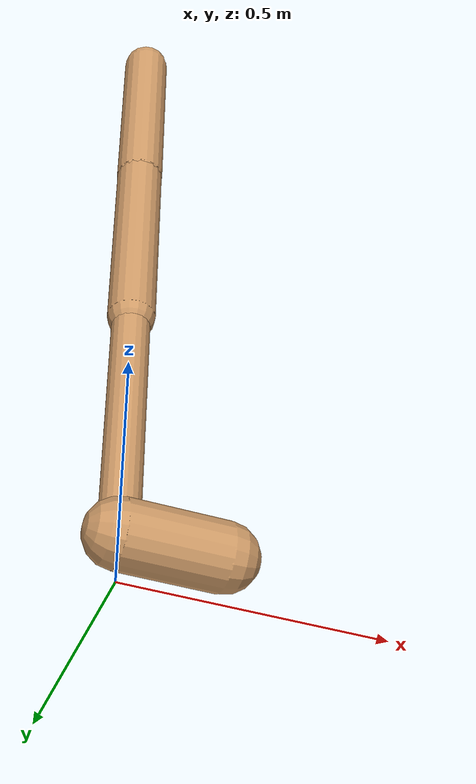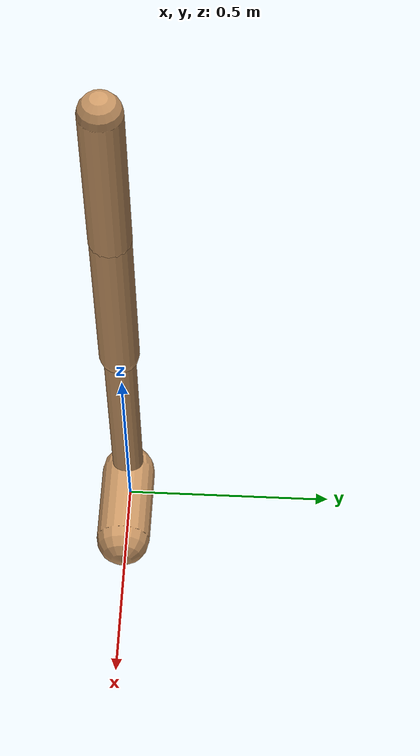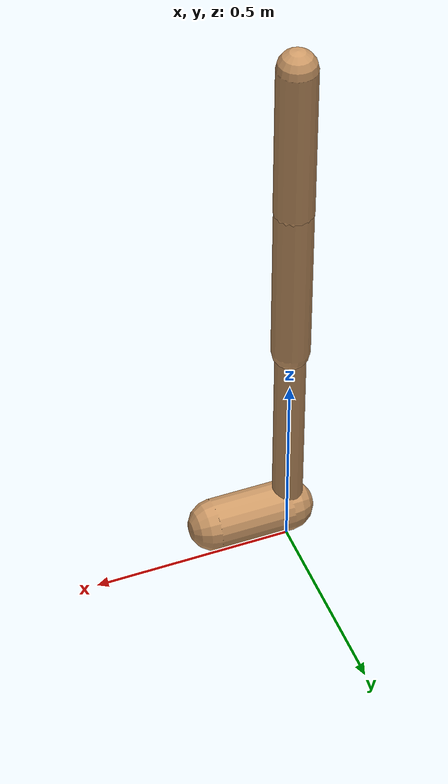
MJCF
<mujoco model="walker2d">
  <compiler angle="degree" coordinate="global" inertiafromgeom="true" />
  <default>
    <joint armature="0.01" damping=".1" limited="true" />
    <geom conaffinity="0" condim="3" contype="1" density="1000" friction="0.8 .1 .1" rgba="0.8 0.6 .4 1" />
  </default>
  <option integrator="RK4" timestep="0.002" />
  <worldbody>

    <body name="torso" pos="0 0 -0.046731404468702886">
      <joint armature="0" axis="1 0 0" damping="0" limited="false" name="ignorex" pos="0 0 0" stiffness="0" type="slide" />
      <joint armature="0" axis="0 0 1" damping="0" limited="false" name="ignorez" pos="0 0 0" ref="1.25" stiffness="0" type="slide" />
      <joint armature="0" axis="0 1 0" damping="0" limited="false" name="ignorey" pos="0 0 0" stiffness="0" type="hinge" />
      <geom fromto="0 0 1.45 0 0 1.05" name="torso_geom" size="0.04829063879112758" type="capsule" />
      <body name="thigh">
        <joint axis="0 -1 0" name="thigh_joint" pos="0 0 1.05" range="-150 0" type="hinge" />
        <geom fromto="0.0 0.0 1.05 0.0 0.0 0.6221359284325435" name="thigh_geom" size="0.04737179375767557" type="capsule" />
        <body name="leg" pos="0.0 0.0 0.022135928432543528">
          <joint axis="0 -1 0" name="leg_joint" pos="0 0 0.6" range="-150 0" type="hinge" />
          <geom fromto="0.0 0.0 0.6 0.0 0.0 0.12459547603615942" name="leg_geom" size="0.037897435006140456" type="capsule" />
          <body name="foot" pos="0.0 0.0 0.024595476036159414">
            <joint axis="0 -1 0" name="foot_joint" pos="0 0 0.1" range="-45 45" type="hinge" />
            <geom fromto="0.0 0.0 0.1 0.19319916163057474 0.0 0.1" name="foot_geom" size="0.0649840260644031" type="capsule" />
          </body>
        </body>
      </body>

      <body name="thigh_left">
        <joint axis="0 -1 0" name="thigh_left_joint" pos="0 0 1.05" range="-150 0" type="hinge" />
        <geom fromto="0.0 0.0 1.05 0.0 0.0 0.6221359284325435" name="thigh_left_geom" rgba=".7 .3 .6 1" size="0.04737179375767557" type="capsule" />
        <body name="leg_left" pos="0.0 0.0 0.022135928432543528">
          <joint axis="0 -1 0" name="leg_left_joint" pos="0 0 0.6" range="-150 0" type="hinge" />
          <geom fromto="0.0 0.0 0.6 0.0 0.0 0.12459547603615942" name="leg_left_geom" rgba=".7 .3 .6 1" size="0.037897435006140456" type="capsule" />
          <body name="foot_left" pos="0.0 0.0 0.024595476036159414">
            <joint axis="0 -1 0" name="foot_left_joint" pos="0 0 0.1" range="-45 45" type="hinge" />
            <geom fromto="0.0 0.0 0.1 0.19319916163057474 0.0 0.1" name="foot_left_geom" rgba=".7 .3 .6 1" size="0.0649840260644031" type="capsule" />
          </body>
        </body>
      </body>
    </body>
  </worldbody>
  <actuator>

    <motor ctrllimited="true" ctrlrange="-1.0 1.0" gear="100" joint="thigh_joint" />
    <motor ctrllimited="true" ctrlrange="-1.0 1.0" gear="100" joint="leg_joint" />
    <motor ctrllimited="true" ctrlrange="-1.0 1.0" gear="100" joint="foot_joint" />
    <motor ctrllimited="true" ctrlrange="-1.0 1.0" gear="100" joint="thigh_left_joint" />
    <motor ctrllimited="true" ctrlrange="-1.0 1.0" gear="100" joint="leg_left_joint" />
    <motor ctrllimited="true" ctrlrange="-1.0 1.0" gear="100" joint="foot_left_joint" />

  </actuator>
</mujoco>
